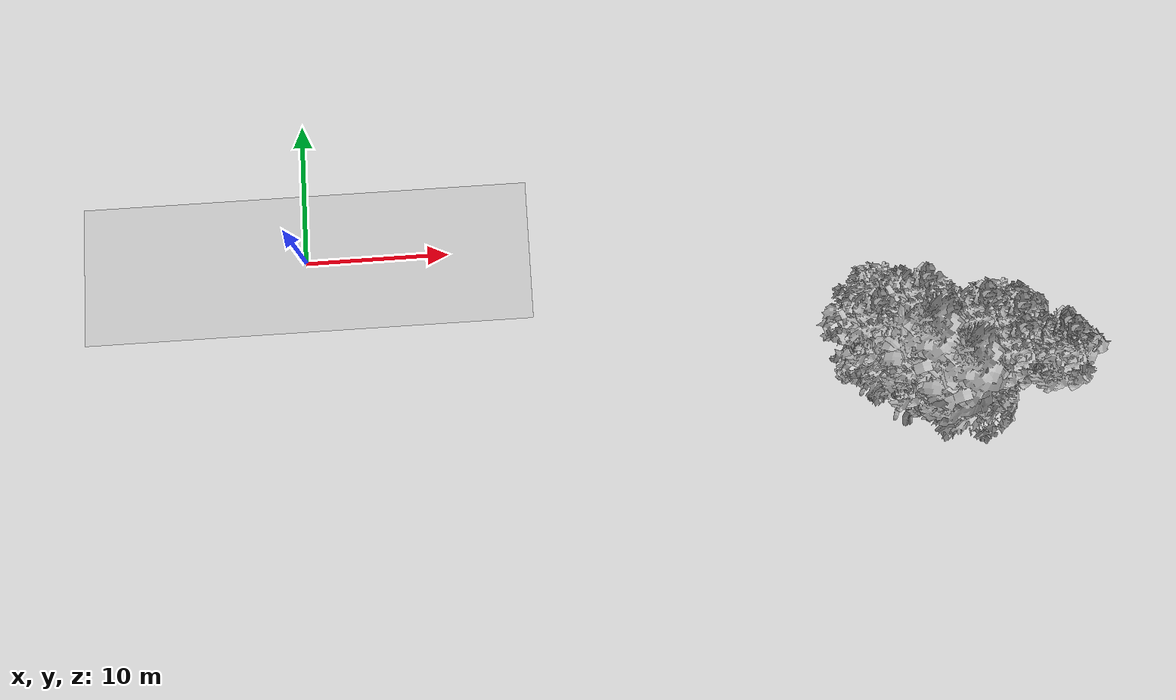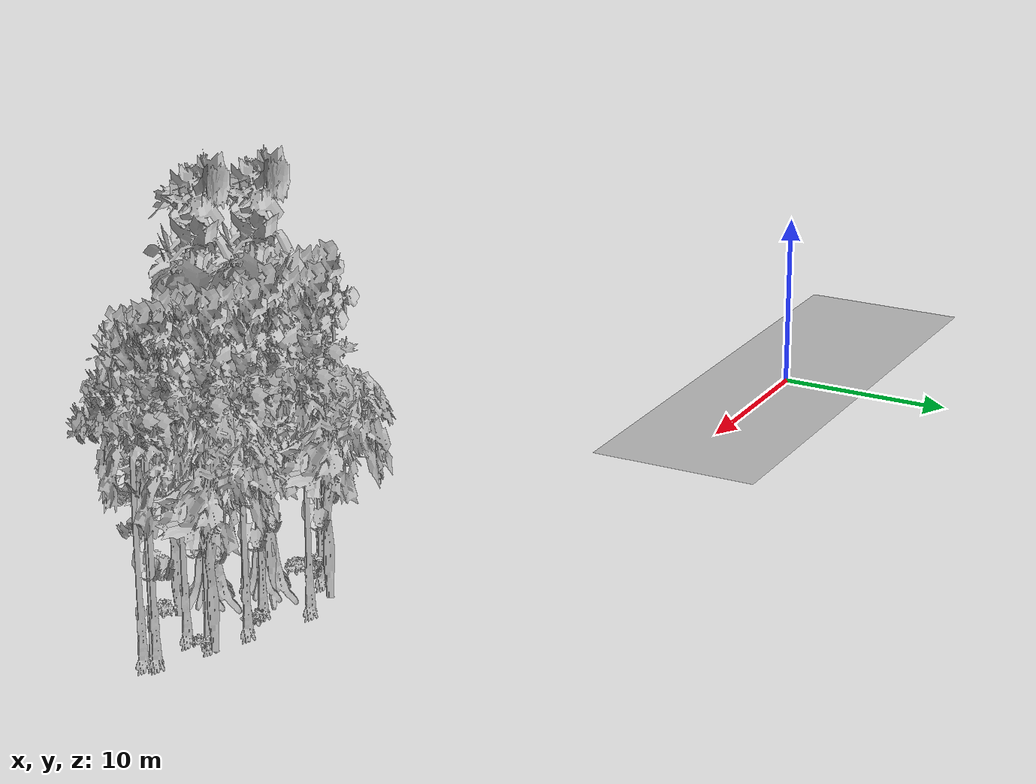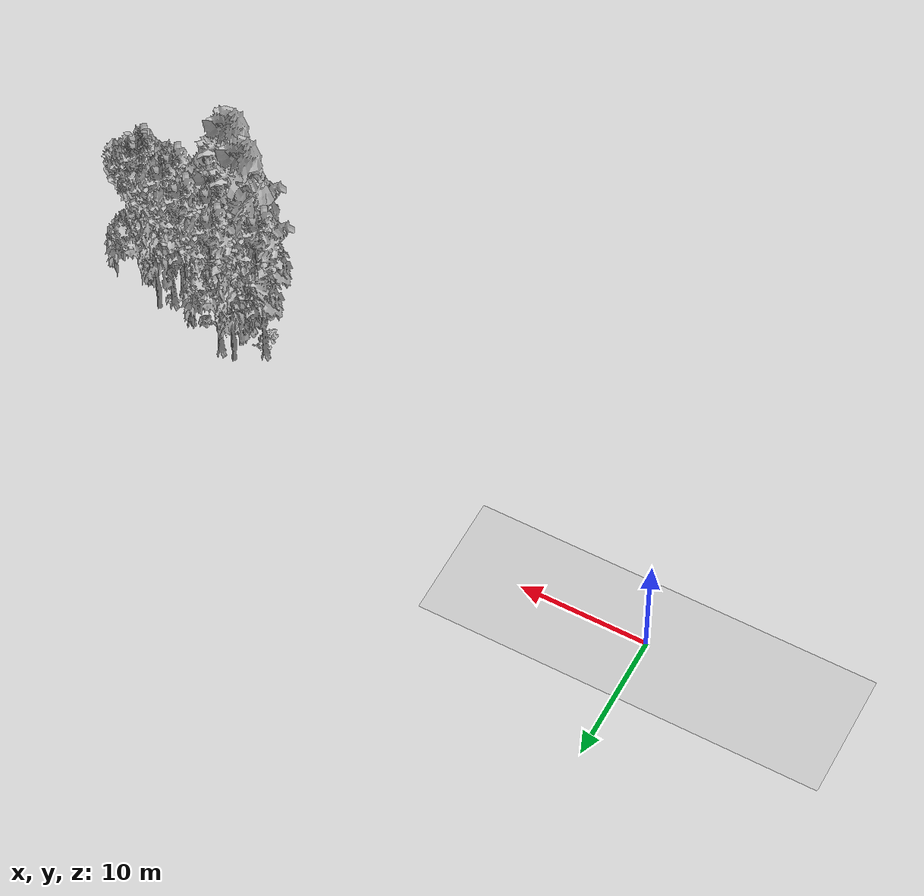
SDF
<sdf version="1.7">
 <world name="default">
  <model name="ground_plane">
   <static>1</static>
   <link name="link">
    <collision name="collision">
     <geometry><plane><normal>0 0 1</normal><size>100 100</size></plane></geometry>
     <surface><contact><ode><min_depth>0.01</min_depth><max_vel>0</max_vel></ode></contact></surface>
    </collision>
    <visual name="grass">
     <cast_shadows>0</cast_shadows>
     <geometry>
      <mesh>
       <scale>0.5814285714285714 0.18142857142857144 0.1</scale>
       <uri>file://grass_plane/meshes/grass_plane.dae</uri>
      </mesh>
     </geometry>
    </visual>
   </link>
  </model>
  <model name="Tree 4">
   <static>1</static>
   <pose>38.27493516273675 -7.548257788196791 0 1.57079 -0 0</pose>
   <link name="link">
    <collision name="collision">
     <geometry><mesh><scale>3.5 5 3.5</scale><uri>model://tree_2/meshes/tree_2.obj</uri></mesh></geometry>
    </collision>
    <visual name="visual">
     <geometry><mesh><scale>3.5 5 3.5</scale><uri>model://tree_2/meshes/tree_2.obj</uri></mesh></geometry>
    </visual>
   </link>
  </model>
  <model name="Tree 12">
   <static>1</static>
   <pose>38.96880676785882 -12.078393965808754 0 1.57079 -0 0</pose>
   <link name="link">
    <collision name="collision">
     <geometry><mesh><scale>3.5 5 3.5</scale><uri>model://tree_9/meshes/tree_9.obj</uri></mesh></geometry>
    </collision>
    <visual name="visual">
     <geometry><mesh><scale>3.5 5 3.5</scale><uri>model://tree_9/meshes/tree_9.obj</uri></mesh></geometry>
    </visual>
   </link>
  </model>
  <model name="Tree 13">
   <static>1</static>
   <pose>43.086961047620065 -9.127918799912695 0 1.57079 -0 0</pose>
   <link name="link">
    <collision name="collision">
     <geometry><mesh><scale>3.5 5 3.5</scale><uri>model://tree_9/meshes/tree_9.obj</uri></mesh></geometry>
    </collision>
    <visual name="visual">
     <geometry><mesh><scale>3.5 5 3.5</scale><uri>model://tree_9/meshes/tree_9.obj</uri></mesh></geometry>
    </visual>
   </link>
  </model>
  <model name="Tree 22">
   <static>1</static>
   <pose>39.07673374363392 -10.720581911101826 0 1.57079 -0 0</pose>
   <link name="link">
    <collision name="collision">
     <geometry><mesh><scale>3.5 5 3.5</scale><uri>model://tree_4/meshes/tree_4.obj</uri></mesh></geometry>
    </collision>
    <visual name="visual">
     <geometry><mesh><scale>3.5 5 3.5</scale><uri>model://tree_4/meshes/tree_4.obj</uri></mesh></geometry>
    </visual>
   </link>
  </model>
  <model name="Tree 42">
   <static>1</static>
   <pose>41.23529913141125 -12.578813690471156 0 1.57079 -0 0</pose>
   <link name="link">
    <collision name="collision">
     <geometry><mesh><scale>3.5 5 3.5</scale><uri>model://tree_4/meshes/tree_4.obj</uri></mesh></geometry>
    </collision>
    <visual name="visual">
     <geometry><mesh><scale>3.5 5 3.5</scale><uri>model://tree_4/meshes/tree_4.obj</uri></mesh></geometry>
    </visual>
   </link>
  </model>
  <model name="Tree 89">
   <static>1</static>
   <pose>45.0440710267673 -11.244624457654057 0 1.57079 -0 0</pose>
   <link name="link">
    <collision name="collision">
     <geometry><mesh><scale>3.5 5 3.5</scale><uri>model://tree_9/meshes/tree_9.obj</uri></mesh></geometry>
    </collision>
    <visual name="visual">
     <geometry><mesh><scale>3.5 5 3.5</scale><uri>model://tree_9/meshes/tree_9.obj</uri></mesh></geometry>
    </visual>
   </link>
  </model>
  <model name="Tree 131">
   <static>1</static>
   <pose>45.75232738030678 -9.073056198522236 0 1.57079 -0 0</pose>
   <link name="link">
    <collision name="collision">
     <geometry><mesh><scale>3.5 5 3.5</scale><uri>model://tree_2/meshes/tree_2.obj</uri></mesh></geometry>
    </collision>
    <visual name="visual">
     <geometry><mesh><scale>3.5 5 3.5</scale><uri>model://tree_2/meshes/tree_2.obj</uri></mesh></geometry>
    </visual>
   </link>
  </model>
  <model name="Tree 178">
   <static>1</static>
   <pose>45.09517529882703 -9.936952846914439 0 1.57079 -0 0</pose>
   <link name="link">
    <collision name="collision">
     <geometry><mesh><scale>3.5 5 3.5</scale><uri>model://tree_9/meshes/tree_9.obj</uri></mesh></geometry>
    </collision>
    <visual name="visual">
     <geometry><mesh><scale>3.5 5 3.5</scale><uri>model://tree_9/meshes/tree_9.obj</uri></mesh></geometry>
    </visual>
   </link>
  </model>
  <model name="Tree 256">
   <static>1</static>
   <pose>47.67564910175376 -11.22149348227935 0 1.57079 -0 0</pose>
   <link name="link">
    <collision name="collision">
     <geometry><mesh><scale>3.5 5 3.5</scale><uri>model://tree_9/meshes/tree_9.obj</uri></mesh></geometry>
    </collision>
    <visual name="visual">
     <geometry><mesh><scale>3.5 5 3.5</scale><uri>model://tree_9/meshes/tree_9.obj</uri></mesh></geometry>
    </visual>
   </link>
  </model>
  <model name="Tree 269">
   <static>1</static>
   <pose>47.74819258739694 -11.012770557240152 0 1.57079 -0 0</pose>
   <link name="link">
    <collision name="collision">
     <geometry><mesh><scale>3.5 5 3.5</scale><uri>model://tree_9/meshes/tree_9.obj</uri></mesh></geometry>
    </collision>
    <visual name="visual">
     <geometry><mesh><scale>3.5 5 3.5</scale><uri>model://tree_9/meshes/tree_9.obj</uri></mesh></geometry>
    </visual>
   </link>
  </model>
  <model name="Tree 271">
   <static>1</static>
   <pose>39.21143066593166 -10.337869400415057 0 1.57079 -0 0</pose>
   <link name="link">
    <collision name="collision">
     <geometry><mesh><scale>3.5 5 3.5</scale><uri>model://tree_2/meshes/tree_2.obj</uri></mesh></geometry>
    </collision>
    <visual name="visual">
     <geometry><mesh><scale>3.5 5 3.5</scale><uri>model://tree_2/meshes/tree_2.obj</uri></mesh></geometry>
    </visual>
   </link>
  </model>
  <model name="Tree 394">
   <static>1</static>
   <pose>40.89605573630138 -9.763521227214103 0 1.57079 -0 0</pose>
   <link name="link">
    <collision name="collision">
     <geometry><mesh><scale>3.5 5 3.5</scale><uri>model://tree_9/meshes/tree_9.obj</uri></mesh></geometry>
    </collision>
    <visual name="visual">
     <geometry><mesh><scale>3.5 5 3.5</scale><uri>model://tree_9/meshes/tree_9.obj</uri></mesh></geometry>
    </visual>
   </link>
  </model>
  <model name="Tree 410">
   <static>1</static>
   <pose>36.61386808290756 -9.169534726068953 0 1.57079 -0 0</pose>
   <link name="link">
    <collision name="collision">
     <geometry><mesh><scale>3.5 5 3.5</scale><uri>model://tree_9/meshes/tree_9.obj</uri></mesh></geometry>
    </collision>
    <visual name="visual">
     <geometry><mesh><scale>3.5 5 3.5</scale><uri>model://tree_9/meshes/tree_9.obj</uri></mesh></geometry>
    </visual>
   </link>
  </model>
  <model name="Tree 427">
   <static>1</static>
   <pose>43.4132468841007 -12.888607800559075 0 1.57079 -0 0</pose>
   <link name="link">
    <collision name="collision">
     <geometry><mesh><scale>3.5 5 3.5</scale><uri>model://tree_2/meshes/tree_2.obj</uri></mesh></geometry>
    </collision>
    <visual name="visual">
     <geometry><mesh><scale>3.5 5 3.5</scale><uri>model://tree_2/meshes/tree_2.obj</uri></mesh></geometry>
    </visual>
   </link>
  </model>
  <model name="Tree 442">
   <static>1</static>
   <pose>48.09048990422218 -11.531351386481958 0 1.57079 -0 0</pose>
   <link name="link">
    <collision name="collision">
     <geometry><mesh><scale>3.5 5 3.5</scale><uri>model://tree_9/meshes/tree_9.obj</uri></mesh></geometry>
    </collision>
    <visual name="visual">
     <geometry><mesh><scale>3.5 5 3.5</scale><uri>model://tree_9/meshes/tree_9.obj</uri></mesh></geometry>
    </visual>
   </link>
  </model>
  <model name="Tree 447">
   <static>1</static>
   <pose>39.675467919174736 -7.821803279796348 0 1.57079 -0 0</pose>
   <link name="link">
    <collision name="collision">
     <geometry><mesh><scale>3.5 5 3.5</scale><uri>model://tree_9/meshes/tree_9.obj</uri></mesh></geometry>
    </collision>
    <visual name="visual">
     <geometry><mesh><scale>3.5 5 3.5</scale><uri>model://tree_9/meshes/tree_9.obj</uri></mesh></geometry>
    </visual>
   </link>
  </model>
  <model name="Bush 21">
   <static>1</static>
   <pose>44.14729223204604 -13.301520670436439 0 1.57079 -0 0</pose>
   <link name="link">
    <collision name="collision">
     <geometry><mesh><scale>2 2 2</scale><uri>model://bush_3/meshes/bush_3.obj</uri></mesh></geometry>
     <surface><contact><collide_without_contact>false</collide_without_contact></contact></surface>
    </collision>
    <visual name="visual">
     <geometry><mesh><scale>2 2 2</scale><uri>model://bush_3/meshes/bush_3.obj</uri></mesh></geometry>
    </visual>
   </link>
  </model>
  <model name="Bush 43">
   <static>1</static>
   <pose>42.000981887551006 -9.572947139788267 0 1.57079 -0 0</pose>
   <link name="link">
    <collision name="collision">
     <geometry><mesh><scale>2 2 2</scale><uri>model://bush_2/meshes/bush_2.obj</uri></mesh></geometry>
     <surface><contact><collide_without_contact>false</collide_without_contact></contact></surface>
    </collision>
    <visual name="visual">
     <geometry><mesh><scale>2 2 2</scale><uri>model://bush_2/meshes/bush_2.obj</uri></mesh></geometry>
    </visual>
   </link>
  </model>
  <model name="Bush 166">
   <static>1</static>
   <pose>36.90745665184939 -9.361522156941533 0 1.57079 -0 0</pose>
   <link name="link">
    <collision name="collision">
     <geometry><mesh><scale>2 2 2</scale><uri>model://bush_4/meshes/bush_4.obj</uri></mesh></geometry>
     <surface><contact><collide_without_contact>false</collide_without_contact></contact></surface>
    </collision>
    <visual name="visual">
     <geometry><mesh><scale>2 2 2</scale><uri>model://bush_4/meshes/bush_4.obj</uri></mesh></geometry>
    </visual>
   </link>
  </model>
  <model name="Bush 257">
   <static>1</static>
   <pose>36.99415764713859 -10.413848238145949 0 1.57079 -0 0</pose>
   <link name="link">
    <collision name="collision">
     <geometry><mesh><scale>2 2 2</scale><uri>model://bush_3/meshes/bush_3.obj</uri></mesh></geometry>
     <surface><contact><collide_without_contact>false</collide_without_contact></contact></surface>
    </collision>
    <visual name="visual">
     <geometry><mesh><scale>2 2 2</scale><uri>model://bush_3/meshes/bush_3.obj</uri></mesh></geometry>
    </visual>
   </link>
  </model>
  <model name="Bush 296">
   <static>1</static>
   <pose>45.32516159915191 -10.075390165015541 0 1.57079 -0 0</pose>
   <link name="link">
    <collision name="collision">
     <geometry><mesh><scale>2 2 2</scale><uri>model://bush_2/meshes/bush_2.obj</uri></mesh></geometry>
     <surface><contact><collide_without_contact>false</collide_without_contact></contact></surface>
    </collision>
    <visual name="visual">
     <geometry><mesh><scale>2 2 2</scale><uri>model://bush_2/meshes/bush_2.obj</uri></mesh></geometry>
    </visual>
   </link>
  </model>
  <model name="Bush 336">
   <static>1</static>
   <pose>42.0594574411126 -9.500221210859246 0 1.57079 -0 0</pose>
   <link name="link">
    <collision name="collision">
     <geometry><mesh><scale>2 2 2</scale><uri>model://bush_2/meshes/bush_2.obj</uri></mesh></geometry>
     <surface><contact><collide_without_contact>false</collide_without_contact></contact></surface>
    </collision>
    <visual name="visual">
     <geometry><mesh><scale>2 2 2</scale><uri>model://bush_2/meshes/bush_2.obj</uri></mesh></geometry>
    </visual>
   </link>
  </model>
 </world>
</sdf>
